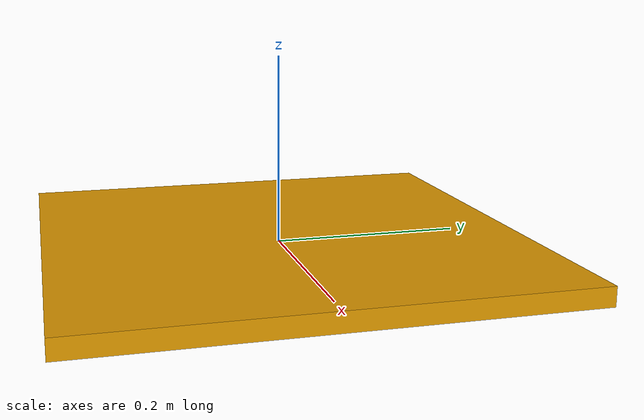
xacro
<?xml version="1.0" ?>
<robot name="chessboard">
  <link name="chessboard__board">
    <inertial>
      <mass value="0"/>
      <origin rpy="0  0  0" xyz="0  0  0"/>
      <inertia ixx="0" ixy="0" ixz="0" iyy="0" iyz="0" izz="0"/>
    </inertial>
    <collision name="chessboard__collision">
      <origin rpy="0  0  0" xyz="0  0  0"/>
      <geometry>
        <box size="0.5 0.5 0.02"/>
      </geometry>
    </collision>
    <visual name="chessboard__visual">
      <origin rpy="0  0  0" xyz="0  0  0"/>
      <geometry>
        <box size="0.5 0.5 0.02"/>
        <mesh filename="package://baxter_chess_pkg/models/chessboard/chessboard.dae" scale="1.0 1.0 1.0"/>
      </geometry>
    </visual>
  </link>
</robot>
